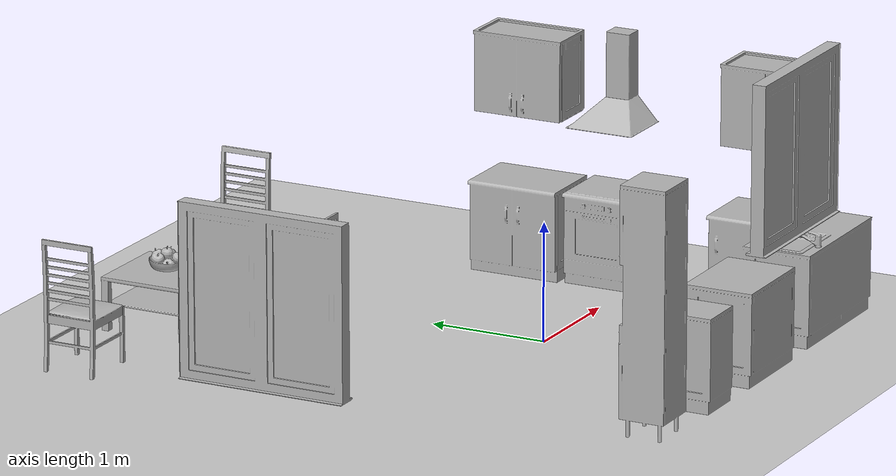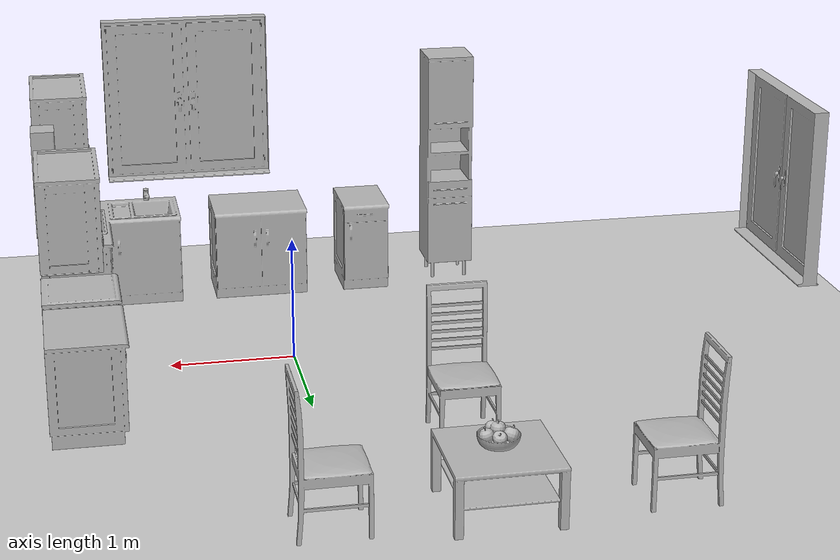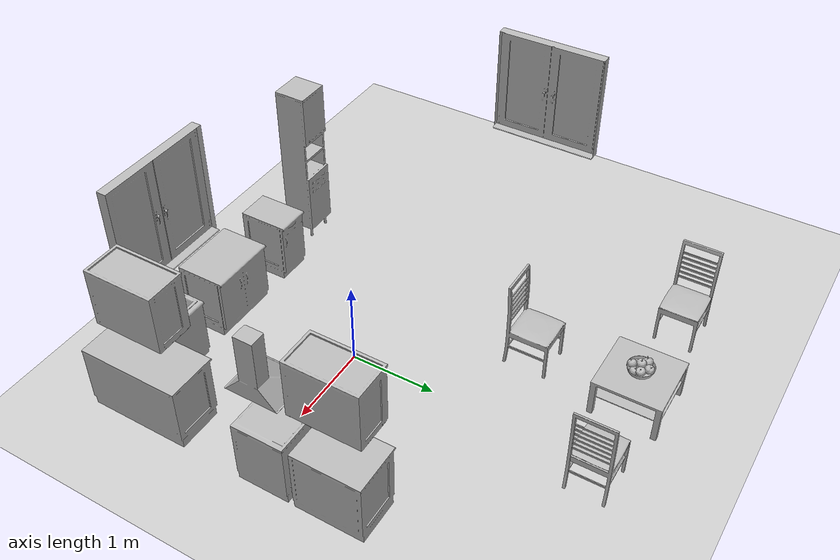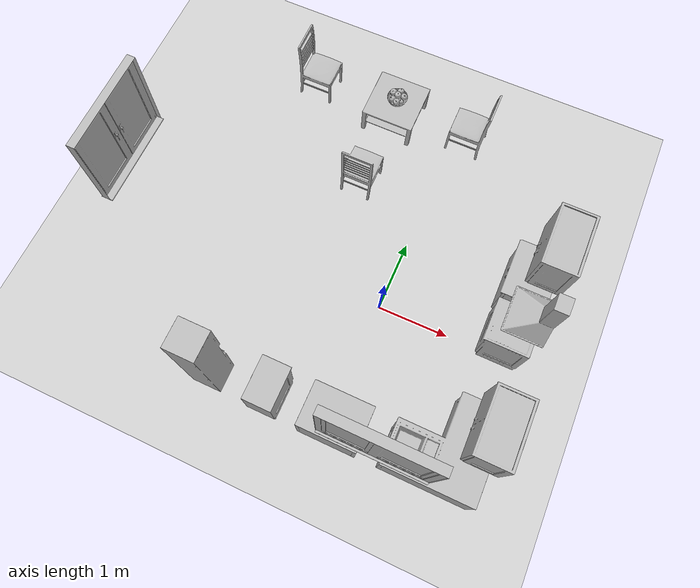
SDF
<sdf version="1.4">
 <world name="default">
  <light name="sun" type="directional">
   <pose>0 0 10 0 -0 0</pose>
   <diffuse>0.8 0.8 0.8 1</diffuse>
   <specular>0.2 0.2 0.2 1</specular>
   <attenuation>
    <range>1000</range>
    <constant>0.9</constant>
    <linear>0.01</linear>
    <quadratic>0.001</quadratic>
   </attenuation>
   <direction>-0.5 0.1 -0.9</direction>
  </light>
  <model name="ground_plane">
   <static>1</static>
   <link name="link">
    <collision name="collision">
     <geometry><plane><normal>0 0 1</normal><size>100 100</size></plane></geometry>
     <surface><friction><ode><mu>100</mu><mu2>50</mu2></ode></friction></surface>
    </collision>
    <visual name="visual">
     <cast_shadows>0</cast_shadows>
     <geometry><plane><normal>0 0 1</normal><size>100 100</size></plane></geometry>
     <material>
      <script><uri>file://media/materials/scripts/gazebo.material</uri><name>Gazebo/Grey</name></script>
     </material>
    </visual>
    <velocity_decay><linear>0</linear><angular>0</angular></velocity_decay>
   </link>
  </model>
  <physics type="ode">
   <max_step_size>0.001</max_step_size>
   <real_time_factor>1</real_time_factor>
   <real_time_update_rate>1000</real_time_update_rate>
   <gravity>0 0 -9.8</gravity>
  </physics>
  <scene><ambient>0.4 0.4 0.4 1</ambient><background>0.7 0.7 0.7 1</background><shadows>1</shadows></scene>
  <spherical_coordinates>
   <surface_model>EARTH_WGS84</surface_model>
   <latitude_deg>0</latitude_deg>
   <longitude_deg>0</longitude_deg>
   <elevation>0</elevation>
   <heading_deg>0</heading_deg>
  </spherical_coordinates>
  <model name="212_0">
   <pose>-3.93306 0.371811 0.72 0 -0 0</pose>
   <static>1</static>
   <link name="link">
    <collision name="collision"><geometry><box><size>0.175 1.4 2</size></box></geometry></collision>
    <visual name="visual"><geometry><mesh><uri>model://212/212.dae</uri></mesh></geometry></visual>
    <velocity_decay><linear>0</linear><angular>0</angular></velocity_decay>
   </link>
  </model>
  <model name="212_1">
   <pose>0.6485 -1.89834 1.00546 0 -0 1.5708</pose>
   <static>1</static>
   <link name="link">
    <collision name="collision"><geometry><box><size>0.175 1.4 2</size></box></geometry></collision>
    <visual name="visual"><geometry><mesh><uri>model://212/212.dae</uri></mesh></geometry></visual>
    <velocity_decay><linear>0</linear><angular>0</angular></velocity_decay>
   </link>
  </model>
  <model name="92_0">
   <pose>0.08259 -1.68022 0.003156 0 -0 1.5708</pose>
   <static>1</static>
   <link name="link">
    <collision name="collision"><geometry><box><size>0.600001 0.800014 2</size></box></geometry></collision>
    <visual name="visual"><geometry><mesh><uri>model://92/92.dae</uri></mesh></geometry></visual>
    <velocity_decay><linear>0</linear><angular>0</angular></velocity_decay>
   </link>
  </model>
  <model name="101_0">
   <pose>1.67579 0.233264 0.009716 0 0 -3.14159</pose>
   <static>1</static>
   <link name="link">
    <collision name="collision"><geometry><box><size>0.600001 0.600354 2</size></box></geometry></collision>
    <visual name="visual"><geometry><mesh><uri>model://101/101.dae</uri></mesh></geometry></visual>
    <velocity_decay><linear>0</linear><angular>0</angular></velocity_decay>
   </link>
  </model>
  <model name="92_1">
   <pose>1.67197 1.00126 -0.000241 0 0 -3.14159</pose>
   <static>1</static>
   <link name="link">
    <collision name="collision"><geometry><box><size>0.600001 0.800014 2</size></box></geometry></collision>
    <visual name="visual"><geometry><mesh><uri>model://92/92.dae</uri></mesh></geometry></visual>
    <velocity_decay><linear>0</linear><angular>0</angular></velocity_decay>
   </link>
  </model>
  <model name="137_0">
   <pose>1.37726 -1.37855 0.007475 0 -0 1.5708</pose>
   <static>1</static>
   <link name="link">
    <collision name="collision"><geometry><box><size>1.2 1.19969 2</size></box></geometry></collision>
    <visual name="visual"><geometry><mesh><uri>model://137/137.dae</uri></mesh></geometry></visual>
    <velocity_decay><linear>0</linear><angular>0</angular></velocity_decay>
   </link>
  </model>
  <model name="94_0">
   <pose>-0.841406 -1.67111 0.005953 0 -0 1.5708</pose>
   <static>1</static>
   <link name="link">
    <collision name="collision"><geometry><box><size>0.600001 0.4 2</size></box></geometry></collision>
    <visual name="visual"><geometry><mesh><uri>model://94/94.dae</uri></mesh></geometry></visual>
    <velocity_decay><linear>0</linear><angular>0</angular></velocity_decay>
   </link>
  </model>
  <model name="191_0">
   <pose>-1.63007 -1.7589 0.002268 0 -0 1.5708</pose>
   <static>1</static>
   <link name="link">
    <collision name="collision"><geometry><box><size>0.410355 0.4 2</size></box></geometry></collision>
    <visual name="visual"><geometry><mesh><uri>model://191/191.dae</uri></mesh></geometry></visual>
    <velocity_decay><linear>0</linear><angular>0</angular></velocity_decay>
   </link>
  </model>
  <model name="s__871_0">
   <pose>1.71702 0.245262 1.3273 0 0 -3.14159</pose>
   <static>1</static>
   <link name="link">
    <collision name="collision"><geometry><box><size>0.52 0.6 2</size></box></geometry></collision>
    <visual name="visual"><geometry><mesh><uri>model://s__871/s__871.dae</uri></mesh></geometry></visual>
    <velocity_decay><linear>0</linear><angular>0</angular></velocity_decay>
   </link>
  </model>
  <model name="250_0">
   <pose>1.74305 -1.21413 1.3426 0 0 -3.14159</pose>
   <static>1</static>
   <link name="link">
    <collision name="collision"><geometry><box><size>0.458526 0.800012 2</size></box></geometry></collision>
    <visual name="visual"><geometry><mesh><uri>model://250/250.dae</uri></mesh></geometry></visual>
    <velocity_decay><linear>0</linear><angular>0</angular></velocity_decay>
   </link>
  </model>
  <model name="250_1">
   <pose>1.73338 1.02526 1.33752 0 0 -3.14159</pose>
   <static>1</static>
   <link name="link">
    <collision name="collision"><geometry><box><size>0.458526 0.800012 2</size></box></geometry></collision>
    <visual name="visual"><geometry><mesh><uri>model://250/250.dae</uri></mesh></geometry></visual>
    <velocity_decay><linear>0</linear><angular>0</angular></velocity_decay>
   </link>
  </model>
  <model name="71_0">
   <pose>-0.983836 2.91035 0 0 0 -3.14159</pose>
   <static>1</static>
   <link name="link">
    <collision name="collision"><geometry><box><size>0.78 0.78 2</size></box></geometry></collision>
    <visual name="visual"><geometry><mesh><uri>model://71/71.dae</uri></mesh></geometry></visual>
    <velocity_decay><linear>0</linear><angular>0</angular></velocity_decay>
   </link>
  </model>
  <model name="89_0">
   <pose>-1.01109 1.68563 0.00066 0 -0 1.5708</pose>
   <static>1</static>
   <link name="link">
    <collision name="collision"><geometry><box><size>0.511274 0.46 2</size></box></geometry></collision>
    <visual name="visual"><geometry><mesh><uri>model://89/89.dae</uri></mesh></geometry></visual>
    <velocity_decay><linear>0</linear><angular>0</angular></velocity_decay>
   </link>
  </model>
  <model name="89_1">
   <pose>0.178542 2.94778 0.00026 0 0 -3.14159</pose>
   <static>1</static>
   <link name="link">
    <collision name="collision"><geometry><box><size>0.511274 0.46 2</size></box></geometry></collision>
    <visual name="visual"><geometry><mesh><uri>model://89/89.dae</uri></mesh></geometry></visual>
    <velocity_decay><linear>0</linear><angular>0</angular></velocity_decay>
   </link>
  </model>
  <model name="89_2">
   <pose>-2.24297 2.94873 0.001392 0 -0 4e-06</pose>
   <static>1</static>
   <link name="link">
    <collision name="collision"><geometry><box><size>0.511274 0.46 2</size></box></geometry></collision>
    <visual name="visual"><geometry><mesh><uri>model://89/89.dae</uri></mesh></geometry></visual>
    <velocity_decay><linear>0</linear><angular>0</angular></velocity_decay>
   </link>
  </model>
  <model name="678_0">
   <pose>-0.977643 2.90836 0.452675 0 -0 0</pose>
   <static>1</static>
   <link name="link">
    <collision name="collision"><geometry><box><size>0.299858 0.299858 2</size></box></geometry></collision>
    <visual name="visual"><geometry><mesh><uri>model://678/678.dae</uri></mesh></geometry></visual>
    <velocity_decay><linear>0</linear><angular>0</angular></velocity_decay>
   </link>
  </model>
 </world>
</sdf>
